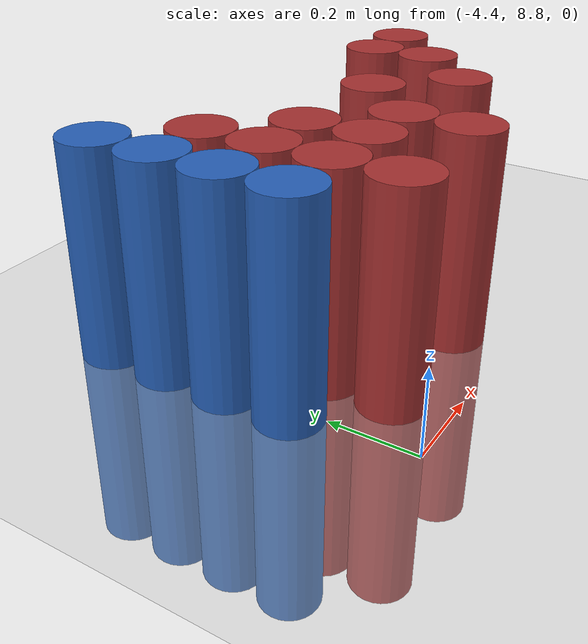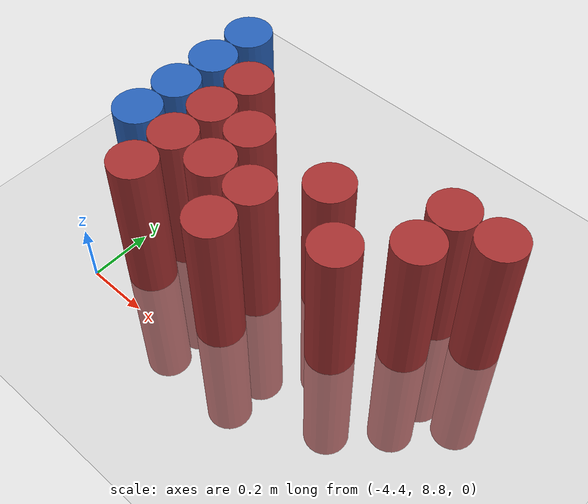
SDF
<sdf version="1.6">
 <world name="default">
  <model name="ground_plane">
   <static>1</static>
   <link name="link">
    <collision name="collision">
     <geometry><plane><normal>0 0 1</normal><size>100 100</size></plane></geometry>
     <surface><friction><ode><mu>100</mu><mu2>50</mu2></ode></friction></surface>
    </collision>
    <visual name="visual">
     <cast_shadows>0</cast_shadows>
     <geometry><plane><normal>0 0 1</normal><size>100 100</size></plane></geometry>
     <material>
      <script><uri>file://media/materials/scripts/gazebo.material</uri><name>Gazebo/Grey</name></script>
     </material>
    </visual>
   </link>
  </model>
  <model name="unit_cylinder_122">
   <static>1</static>
   <pose>-4.425000 9.075000 0.000000 0.000000 0.000000 0.000000</pose>
   <link name="link">
    <inertial>
     <mass>1</mass>
     <inertia><ixx>0.145833</ixx><ixy>0</ixy><ixz>0</ixz><iyy>0.145833</iyy><iyz>0</iyz><izz>0.125</izz></inertia>
    </inertial>
    <collision name="collision">
     <geometry><cylinder><radius>0.075000</radius><length>1</length></cylinder></geometry>
    </collision>
    <visual name="visual">
     <geometry><cylinder><radius>0.075000</radius><length>1</length></cylinder></geometry>
     <material>
      <ambient>0.152000 0.379000 0.720000 1</ambient>
      <diffuse>0.152000 0.379000 0.720000 1</diffuse>
     </material>
     <material>
      <script><name>Gazebo/Grey</name><uri>file://media/materials/scripts/gazebo.material</uri></script>
     </material>
    </visual>
   </link>
  </model>
  <model name="unit_cylinder_123">
   <static>1</static>
   <pose>-4.425000 9.225000 0.000000 0.000000 0.000000 0.000000</pose>
   <link name="link">
    <inertial>
     <mass>1</mass>
     <inertia><ixx>0.145833</ixx><ixy>0</ixy><ixz>0</ixz><iyy>0.145833</iyy><iyz>0</iyz><izz>0.125</izz></inertia>
    </inertial>
    <collision name="collision">
     <geometry><cylinder><radius>0.075000</radius><length>1</length></cylinder></geometry>
    </collision>
    <visual name="visual">
     <geometry><cylinder><radius>0.075000</radius><length>1</length></cylinder></geometry>
     <material>
      <ambient>0.152000 0.379000 0.720000 1</ambient>
      <diffuse>0.152000 0.379000 0.720000 1</diffuse>
     </material>
     <material>
      <script><name>Gazebo/Grey</name><uri>file://media/materials/scripts/gazebo.material</uri></script>
     </material>
    </visual>
   </link>
  </model>
  <model name="unit_cylinder_124">
   <static>1</static>
   <pose>-4.425000 9.375000 0.000000 0.000000 0.000000 0.000000</pose>
   <link name="link">
    <inertial>
     <mass>1</mass>
     <inertia><ixx>0.145833</ixx><ixy>0</ixy><ixz>0</ixz><iyy>0.145833</iyy><iyz>0</iyz><izz>0.125</izz></inertia>
    </inertial>
    <collision name="collision">
     <geometry><cylinder><radius>0.075000</radius><length>1</length></cylinder></geometry>
    </collision>
    <visual name="visual">
     <geometry><cylinder><radius>0.075000</radius><length>1</length></cylinder></geometry>
     <material>
      <ambient>0.152000 0.379000 0.720000 1</ambient>
      <diffuse>0.152000 0.379000 0.720000 1</diffuse>
     </material>
     <material>
      <script><name>Gazebo/Grey</name><uri>file://media/materials/scripts/gazebo.material</uri></script>
     </material>
    </visual>
   </link>
  </model>
  <model name="unit_cylinder_125">
   <static>1</static>
   <pose>-4.425000 9.525000 0.000000 0.000000 0.000000 0.000000</pose>
   <link name="link">
    <inertial>
     <mass>1</mass>
     <inertia><ixx>0.145833</ixx><ixy>0</ixy><ixz>0</ixz><iyy>0.145833</iyy><iyz>0</iyz><izz>0.125</izz></inertia>
    </inertial>
    <collision name="collision">
     <geometry><cylinder><radius>0.075000</radius><length>1</length></cylinder></geometry>
    </collision>
    <visual name="visual">
     <geometry><cylinder><radius>0.075000</radius><length>1</length></cylinder></geometry>
     <material>
      <ambient>0.152000 0.379000 0.720000 1</ambient>
      <diffuse>0.152000 0.379000 0.720000 1</diffuse>
     </material>
     <material>
      <script><name>Gazebo/Grey</name><uri>file://media/materials/scripts/gazebo.material</uri></script>
     </material>
    </visual>
   </link>
  </model>
  <model name="unit_cylinder_139">
   <static>1</static>
   <pose>-4.275000 8.925000 0.000000 0.000000 0.000000 0.000000</pose>
   <link name="link">
    <inertial>
     <mass>1</mass>
     <inertia><ixx>0.145833</ixx><ixy>0</ixy><ixz>0</ixz><iyy>0.145833</iyy><iyz>0</iyz><izz>0.125</izz></inertia>
    </inertial>
    <collision name="collision">
     <geometry><cylinder><radius>0.075000</radius><length>1</length></cylinder></geometry>
    </collision>
    <visual name="visual">
     <geometry><cylinder><radius>0.075000</radius><length>1</length></cylinder></geometry>
     <material>
      <ambient>0.648000 0.192000 0.192000 1</ambient>
      <diffuse>0.648000 0.192000 0.192000 1</diffuse>
     </material>
     <material>
      <script><name>Gazebo/Grey</name><uri>file://media/materials/scripts/gazebo.material</uri></script>
     </material>
    </visual>
   </link>
  </model>
  <model name="unit_cylinder_140">
   <static>1</static>
   <pose>-4.275000 9.075000 0.000000 0.000000 0.000000 0.000000</pose>
   <link name="link">
    <inertial>
     <mass>1</mass>
     <inertia><ixx>0.145833</ixx><ixy>0</ixy><ixz>0</ixz><iyy>0.145833</iyy><iyz>0</iyz><izz>0.125</izz></inertia>
    </inertial>
    <collision name="collision">
     <geometry><cylinder><radius>0.075000</radius><length>1</length></cylinder></geometry>
    </collision>
    <visual name="visual">
     <geometry><cylinder><radius>0.075000</radius><length>1</length></cylinder></geometry>
     <material>
      <ambient>0.648000 0.192000 0.192000 1</ambient>
      <diffuse>0.648000 0.192000 0.192000 1</diffuse>
     </material>
     <material>
      <script><name>Gazebo/Grey</name><uri>file://media/materials/scripts/gazebo.material</uri></script>
     </material>
    </visual>
   </link>
  </model>
  <model name="unit_cylinder_141">
   <static>1</static>
   <pose>-4.275000 9.225000 0.000000 0.000000 0.000000 0.000000</pose>
   <link name="link">
    <inertial>
     <mass>1</mass>
     <inertia><ixx>0.145833</ixx><ixy>0</ixy><ixz>0</ixz><iyy>0.145833</iyy><iyz>0</iyz><izz>0.125</izz></inertia>
    </inertial>
    <collision name="collision">
     <geometry><cylinder><radius>0.075000</radius><length>1</length></cylinder></geometry>
    </collision>
    <visual name="visual">
     <geometry><cylinder><radius>0.075000</radius><length>1</length></cylinder></geometry>
     <material>
      <ambient>0.648000 0.192000 0.192000 1</ambient>
      <diffuse>0.648000 0.192000 0.192000 1</diffuse>
     </material>
     <material>
      <script><name>Gazebo/Grey</name><uri>file://media/materials/scripts/gazebo.material</uri></script>
     </material>
    </visual>
   </link>
  </model>
  <model name="unit_cylinder_142">
   <static>1</static>
   <pose>-4.275000 9.375000 0.000000 0.000000 0.000000 0.000000</pose>
   <link name="link">
    <inertial>
     <mass>1</mass>
     <inertia><ixx>0.145833</ixx><ixy>0</ixy><ixz>0</ixz><iyy>0.145833</iyy><iyz>0</iyz><izz>0.125</izz></inertia>
    </inertial>
    <collision name="collision">
     <geometry><cylinder><radius>0.075000</radius><length>1</length></cylinder></geometry>
    </collision>
    <visual name="visual">
     <geometry><cylinder><radius>0.075000</radius><length>1</length></cylinder></geometry>
     <material>
      <ambient>0.648000 0.192000 0.192000 1</ambient>
      <diffuse>0.648000 0.192000 0.192000 1</diffuse>
     </material>
     <material>
      <script><name>Gazebo/Grey</name><uri>file://media/materials/scripts/gazebo.material</uri></script>
     </material>
    </visual>
   </link>
  </model>
  <model name="unit_cylinder_148">
   <static>1</static>
   <pose>-4.125000 9.075000 0.000000 0.000000 0.000000 0.000000</pose>
   <link name="link">
    <inertial>
     <mass>1</mass>
     <inertia><ixx>0.145833</ixx><ixy>0</ixy><ixz>0</ixz><iyy>0.145833</iyy><iyz>0</iyz><izz>0.125</izz></inertia>
    </inertial>
    <collision name="collision">
     <geometry><cylinder><radius>0.075000</radius><length>1</length></cylinder></geometry>
    </collision>
    <visual name="visual">
     <geometry><cylinder><radius>0.075000</radius><length>1</length></cylinder></geometry>
     <material>
      <ambient>0.648000 0.192000 0.192000 1</ambient>
      <diffuse>0.648000 0.192000 0.192000 1</diffuse>
     </material>
     <material>
      <script><name>Gazebo/Grey</name><uri>file://media/materials/scripts/gazebo.material</uri></script>
     </material>
    </visual>
   </link>
  </model>
  <model name="unit_cylinder_149">
   <static>1</static>
   <pose>-4.125000 9.225000 0.000000 0.000000 0.000000 0.000000</pose>
   <link name="link">
    <inertial>
     <mass>1</mass>
     <inertia><ixx>0.145833</ixx><ixy>0</ixy><ixz>0</ixz><iyy>0.145833</iyy><iyz>0</iyz><izz>0.125</izz></inertia>
    </inertial>
    <collision name="collision">
     <geometry><cylinder><radius>0.075000</radius><length>1</length></cylinder></geometry>
    </collision>
    <visual name="visual">
     <geometry><cylinder><radius>0.075000</radius><length>1</length></cylinder></geometry>
     <material>
      <ambient>0.648000 0.192000 0.192000 1</ambient>
      <diffuse>0.648000 0.192000 0.192000 1</diffuse>
     </material>
     <material>
      <script><name>Gazebo/Grey</name><uri>file://media/materials/scripts/gazebo.material</uri></script>
     </material>
    </visual>
   </link>
  </model>
  <model name="unit_cylinder_155">
   <static>1</static>
   <pose>-3.975000 8.925000 0.000000 0.000000 0.000000 0.000000</pose>
   <link name="link">
    <inertial>
     <mass>1</mass>
     <inertia><ixx>0.145833</ixx><ixy>0</ixy><ixz>0</ixz><iyy>0.145833</iyy><iyz>0</iyz><izz>0.125</izz></inertia>
    </inertial>
    <collision name="collision">
     <geometry><cylinder><radius>0.075000</radius><length>1</length></cylinder></geometry>
    </collision>
    <visual name="visual">
     <geometry><cylinder><radius>0.075000</radius><length>1</length></cylinder></geometry>
     <material>
      <ambient>0.648000 0.192000 0.192000 1</ambient>
      <diffuse>0.648000 0.192000 0.192000 1</diffuse>
     </material>
     <material>
      <script><name>Gazebo/Grey</name><uri>file://media/materials/scripts/gazebo.material</uri></script>
     </material>
    </visual>
   </link>
  </model>
  <model name="unit_cylinder_156">
   <static>1</static>
   <pose>-3.975000 9.075000 0.000000 0.000000 0.000000 0.000000</pose>
   <link name="link">
    <inertial>
     <mass>1</mass>
     <inertia><ixx>0.145833</ixx><ixy>0</ixy><ixz>0</ixz><iyy>0.145833</iyy><iyz>0</iyz><izz>0.125</izz></inertia>
    </inertial>
    <collision name="collision">
     <geometry><cylinder><radius>0.075000</radius><length>1</length></cylinder></geometry>
    </collision>
    <visual name="visual">
     <geometry><cylinder><radius>0.075000</radius><length>1</length></cylinder></geometry>
     <material>
      <ambient>0.648000 0.192000 0.192000 1</ambient>
      <diffuse>0.648000 0.192000 0.192000 1</diffuse>
     </material>
     <material>
      <script><name>Gazebo/Grey</name><uri>file://media/materials/scripts/gazebo.material</uri></script>
     </material>
    </visual>
   </link>
  </model>
  <model name="unit_cylinder_158">
   <static>1</static>
   <pose>-3.825000 9.225000 0.000000 0.000000 0.000000 0.000000</pose>
   <link name="link">
    <inertial>
     <mass>1</mass>
     <inertia><ixx>0.145833</ixx><ixy>0</ixy><ixz>0</ixz><iyy>0.145833</iyy><iyz>0</iyz><izz>0.125</izz></inertia>
    </inertial>
    <collision name="collision">
     <geometry><cylinder><radius>0.075000</radius><length>1</length></cylinder></geometry>
    </collision>
    <visual name="visual">
     <geometry><cylinder><radius>0.075000</radius><length>1</length></cylinder></geometry>
     <material>
      <ambient>0.648000 0.192000 0.192000 1</ambient>
      <diffuse>0.648000 0.192000 0.192000 1</diffuse>
     </material>
     <material>
      <script><name>Gazebo/Grey</name><uri>file://media/materials/scripts/gazebo.material</uri></script>
     </material>
    </visual>
   </link>
  </model>
  <model name="unit_cylinder_159">
   <static>1</static>
   <pose>-3.675000 9.075000 0.000000 0.000000 0.000000 0.000000</pose>
   <link name="link">
    <inertial>
     <mass>1</mass>
     <inertia><ixx>0.145833</ixx><ixy>0</ixy><ixz>0</ixz><iyy>0.145833</iyy><iyz>0</iyz><izz>0.125</izz></inertia>
    </inertial>
    <collision name="collision">
     <geometry><cylinder><radius>0.075000</radius><length>1</length></cylinder></geometry>
    </collision>
    <visual name="visual">
     <geometry><cylinder><radius>0.075000</radius><length>1</length></cylinder></geometry>
     <material>
      <ambient>0.648000 0.192000 0.192000 1</ambient>
      <diffuse>0.648000 0.192000 0.192000 1</diffuse>
     </material>
     <material>
      <script><name>Gazebo/Grey</name><uri>file://media/materials/scripts/gazebo.material</uri></script>
     </material>
    </visual>
   </link>
  </model>
  <model name="unit_cylinder_160">
   <static>1</static>
   <pose>-3.525000 9.225000 0.000000 0.000000 0.000000 0.000000</pose>
   <link name="link">
    <inertial>
     <mass>1</mass>
     <inertia><ixx>0.145833</ixx><ixy>0</ixy><ixz>0</ixz><iyy>0.145833</iyy><iyz>0</iyz><izz>0.125</izz></inertia>
    </inertial>
    <collision name="collision">
     <geometry><cylinder><radius>0.075000</radius><length>1</length></cylinder></geometry>
    </collision>
    <visual name="visual">
     <geometry><cylinder><radius>0.075000</radius><length>1</length></cylinder></geometry>
     <material>
      <ambient>0.648000 0.192000 0.192000 1</ambient>
      <diffuse>0.648000 0.192000 0.192000 1</diffuse>
     </material>
     <material>
      <script><name>Gazebo/Grey</name><uri>file://media/materials/scripts/gazebo.material</uri></script>
     </material>
    </visual>
   </link>
  </model>
  <model name="unit_cylinder_161">
   <static>1</static>
   <pose>-3.525000 9.375000 0.000000 0.000000 0.000000 0.000000</pose>
   <link name="link">
    <inertial>
     <mass>1</mass>
     <inertia><ixx>0.145833</ixx><ixy>0</ixy><ixz>0</ixz><iyy>0.145833</iyy><iyz>0</iyz><izz>0.125</izz></inertia>
    </inertial>
    <collision name="collision">
     <geometry><cylinder><radius>0.075000</radius><length>1</length></cylinder></geometry>
    </collision>
    <visual name="visual">
     <geometry><cylinder><radius>0.075000</radius><length>1</length></cylinder></geometry>
     <material>
      <ambient>0.648000 0.192000 0.192000 1</ambient>
      <diffuse>0.648000 0.192000 0.192000 1</diffuse>
     </material>
     <material>
      <script><name>Gazebo/Grey</name><uri>file://media/materials/scripts/gazebo.material</uri></script>
     </material>
    </visual>
   </link>
  </model>
  <model name="unit_cylinder_166">
   <static>1</static>
   <pose>-3.375000 9.375000 0.000000 0.000000 0.000000 0.000000</pose>
   <link name="link">
    <inertial>
     <mass>1</mass>
     <inertia><ixx>0.145833</ixx><ixy>0</ixy><ixz>0</ixz><iyy>0.145833</iyy><iyz>0</iyz><izz>0.125</izz></inertia>
    </inertial>
    <collision name="collision">
     <geometry><cylinder><radius>0.075000</radius><length>1</length></cylinder></geometry>
    </collision>
    <visual name="visual">
     <geometry><cylinder><radius>0.075000</radius><length>1</length></cylinder></geometry>
     <material>
      <ambient>0.648000 0.192000 0.192000 1</ambient>
      <diffuse>0.648000 0.192000 0.192000 1</diffuse>
     </material>
     <material>
      <script><name>Gazebo/Grey</name><uri>file://media/materials/scripts/gazebo.material</uri></script>
     </material>
    </visual>
   </link>
  </model>
 </world>
</sdf>
